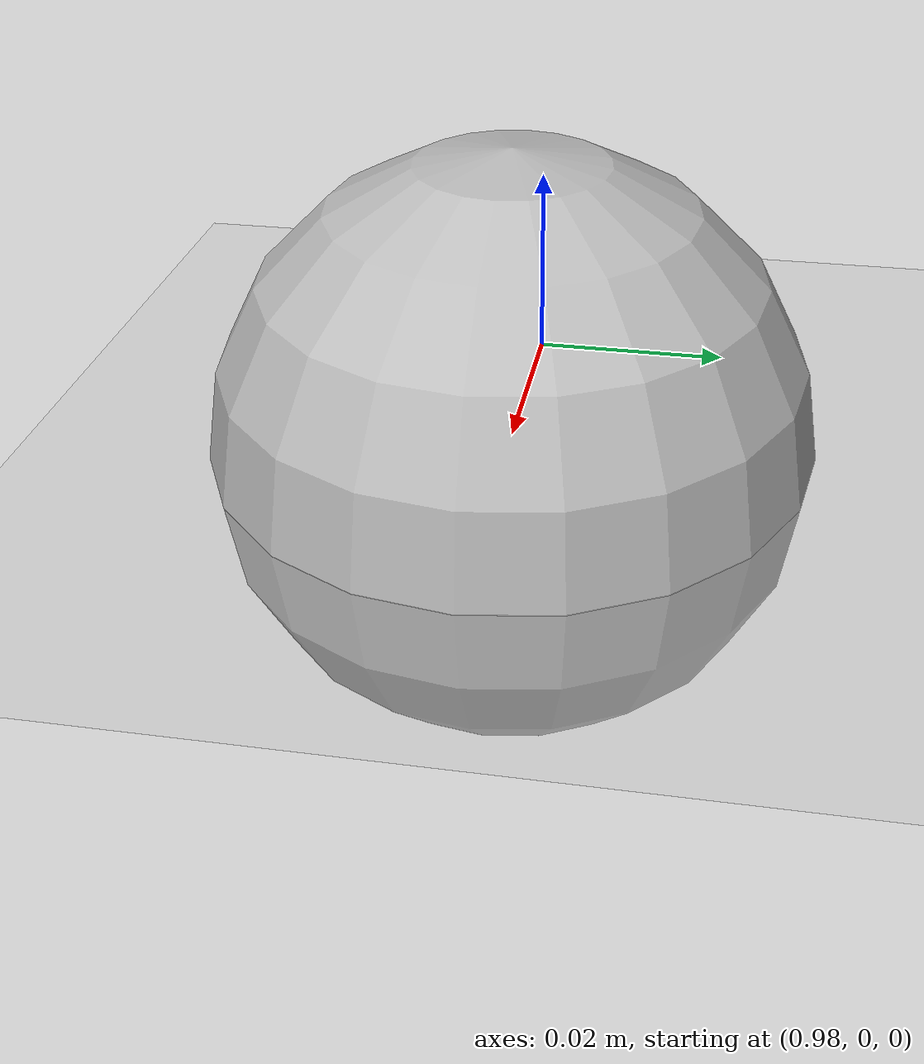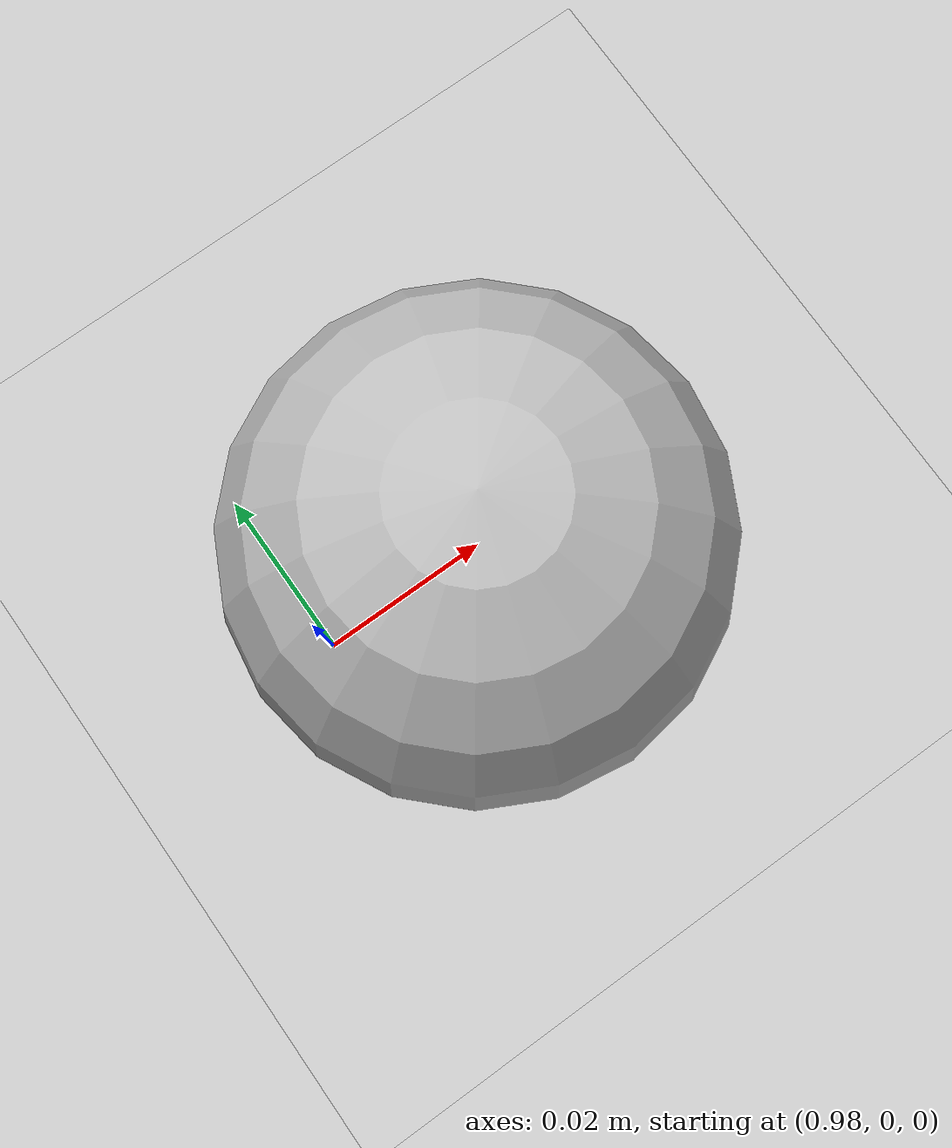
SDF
<?xml version="1.0"?>
<sdf version="1.4">
  <world name="default">
    <include>
      <uri>model://ground_plane</uri>
    </include>
    <include>
      <uri>model://sun</uri>
    </include>

    <!-- Only one ROS interface plugin is required per world, as any other plugin can connect a Gazebo
         topic to a ROS topic (or vise versa). -->
    <plugin name="ros_interface_plugin" filename="librotors_gazebo_ros_interface_plugin.so" />

    <model name="ball">
      <link name="ball">
        <pose>1 0 0 0 0 0</pose>
        <inertial>
          <pose>0 0 0 0 0 0</pose>
          <inertia>
            <ixx>0.01</ixx>
            <ixy>0</ixy>
            <ixz>0</ixz>
            <iyy>0.01</iyy>
            <iyz>0</iyz>
            <izz>0.01</izz>
          </inertia>
          <mass>0.050</mass>
        </inertial>
        <visual name="visual">
          <geometry>
            <sphere>
              <radius>0.03</radius>
            </sphere>
          </geometry>
          <material>
            <script>Gazebo/Purple</script>
          </material>
        </visual>
        <collision name="collision">
          <geometry>
            <sphere>
              <radius>0.03</radius>
            </sphere>
          </geometry>
        </collision>
      </link>
      <plugin name="ball_plugin" filename="librotors_gazebo_ball_plugin.so">
        <ballNamespace>ball</ballNamespace>
        <positionPubTopic>pos</positionPubTopic>
        <velocityPubTopic>vel</velocityPubTopic>
        <throwBallSubTopic>throw</throwBallSubTopic>
        <initialPosition>0 10 0</initialPosition>
        <initialVelocity>0 0 10</initialVelocity>
      </plugin>
    </model>

    <spherical_coordinates>
      <surface_model>EARTH_WGS84</surface_model>
      <latitude_deg>47.3667</latitude_deg>
      <longitude_deg>8.5500</longitude_deg>
      <elevation>500.0</elevation>
      <heading_deg>0</heading_deg>
    </spherical_coordinates>
    <physics type='ode'>
      <ode>
        <solver>
          <type>quick</type>
          <iters>1000</iters>
          <sor>1.3</sor>
        </solver>
        <constraints>
          <cfm>0</cfm>
          <erp>0.2</erp>
          <contact_max_correcting_vel>100</contact_max_correcting_vel>
          <contact_surface_layer>0.001</contact_surface_layer>
        </constraints>
      </ode>
      <max_step_size>0.0025</max_step_size>
      <real_time_factor>1</real_time_factor>
      <real_time_update_rate>400.</real_time_update_rate>
      <gravity>0 0 -9.8</gravity>
    </physics>
  </world>
</sdf>
